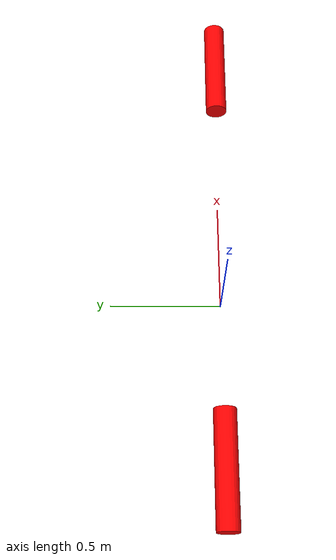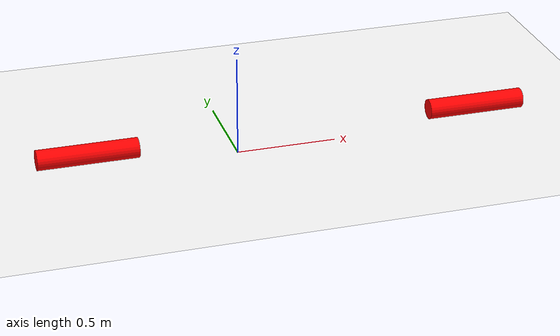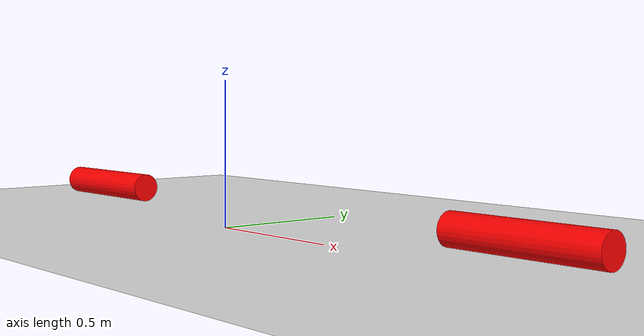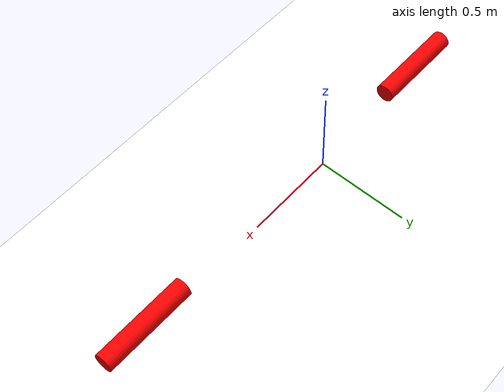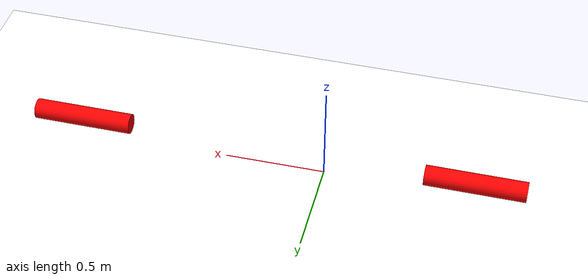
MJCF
<mujoco>
	<asset>
		<material name="red"   rgba="1 0 0 1"/>
		<material name="green" rgba="0 1 0 1"/>
		<material name="blue"  rgba="0 0 1 1"/>
		<material name="white" rgba="1 1 1 1"/>
		<material name="gray"  rgba=".5 .5 .5 1"/>
	</asset>

    <worldbody>
        <light diffuse=".5 .5 .5" pos="0 0 10" dir="0 0 -1"/>
        <geom type="plane" size="2 2 0.1" rgba="1 1 1 1"/>

        <body name="link 0-0" pos="-0.75 0 0.1" euler="0 90 0">
            <joint name="joint 0-0" type="hinge" axis="-1 0 0" pos="-1 0 -0.25"/>
            <geom name="geom link 0-0" type="cylinder" size="0.05 0.25" material="red"/>
        </body>

        <body name="link 1-0" pos="1.25 0 0.1" euler="0 90 0">
            <joint name="joint 1-0" type="hinge" axis="-1 0 0" pos="1 0 -0.25"/>
            <geom name="geom link 1-0" type="cylinder" size="0.05 0.25" material="red"/>
        </body>

        <body name="link 0-0 shade" pos="-0.75 0 0.1" euler="0 90 0">
            <joint name="joint 0-0 shade" type="hinge" axis="-1 0 0" pos="-1 0 -0.25"/>
            <geom name="geom link 0-0 shade" type="cylinder" size="0.05 0.25" material="green"/>
        </body>

        <body name="link 1-0 shade" pos="1.25 0 0.1" euler="0 90 0">
            <joint name="joint 1-0 shade" type="hinge" axis="-1 0 0" pos="1 0 -0.25"/>
            <geom name="geom link 1-0 shade" type="cylinder" size="0.05 0.25" material="green"/>
        </body>

    </worldbody>

    <contact>
        <exclude body1="link 0-0 shade" body2="link 0-0"/>
        <exclude body1="link 0-0 shade" body2="link 1-0"/>
        <exclude body1="link 1-0 shade" body2="link 0-0"/>
        <exclude body1="link 1-0 shade" body2="link 1-0"/>
    </contact>
</mujoco>
